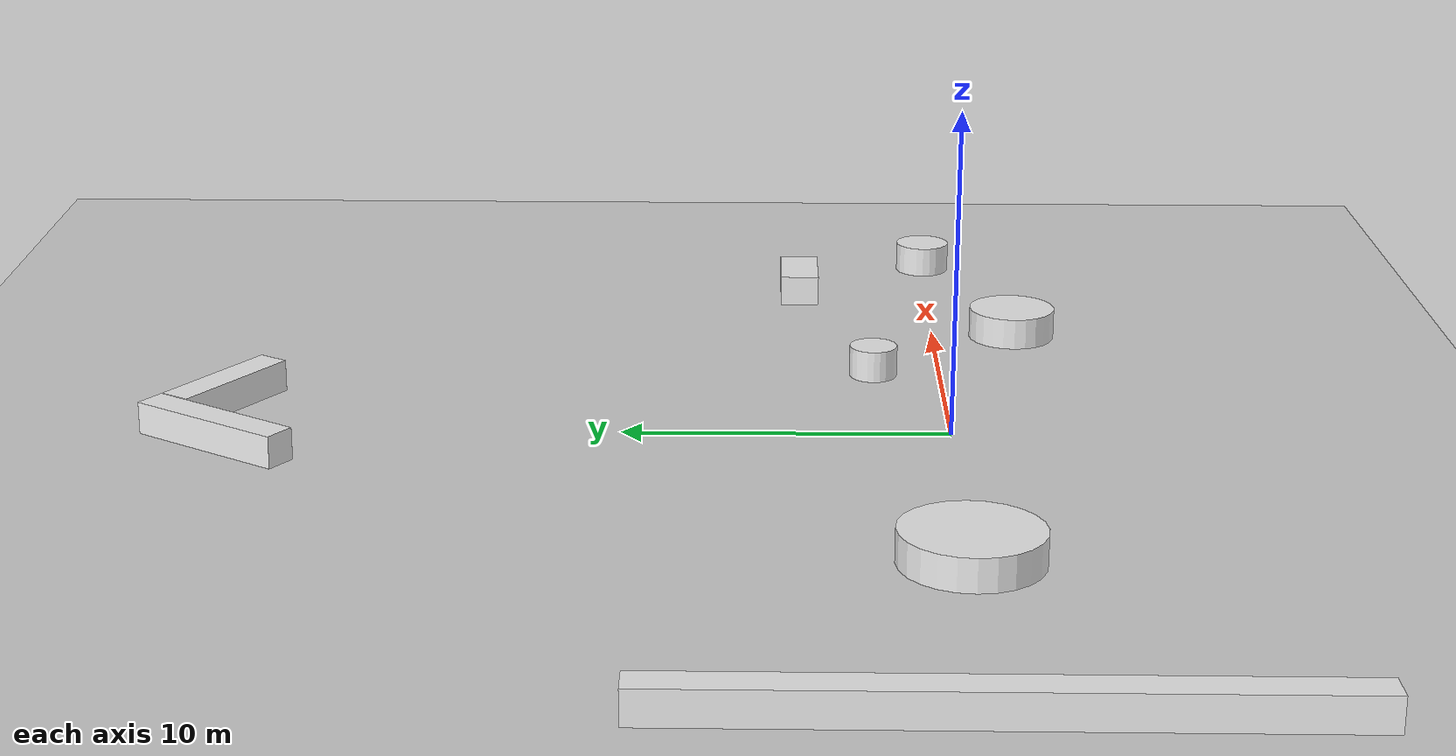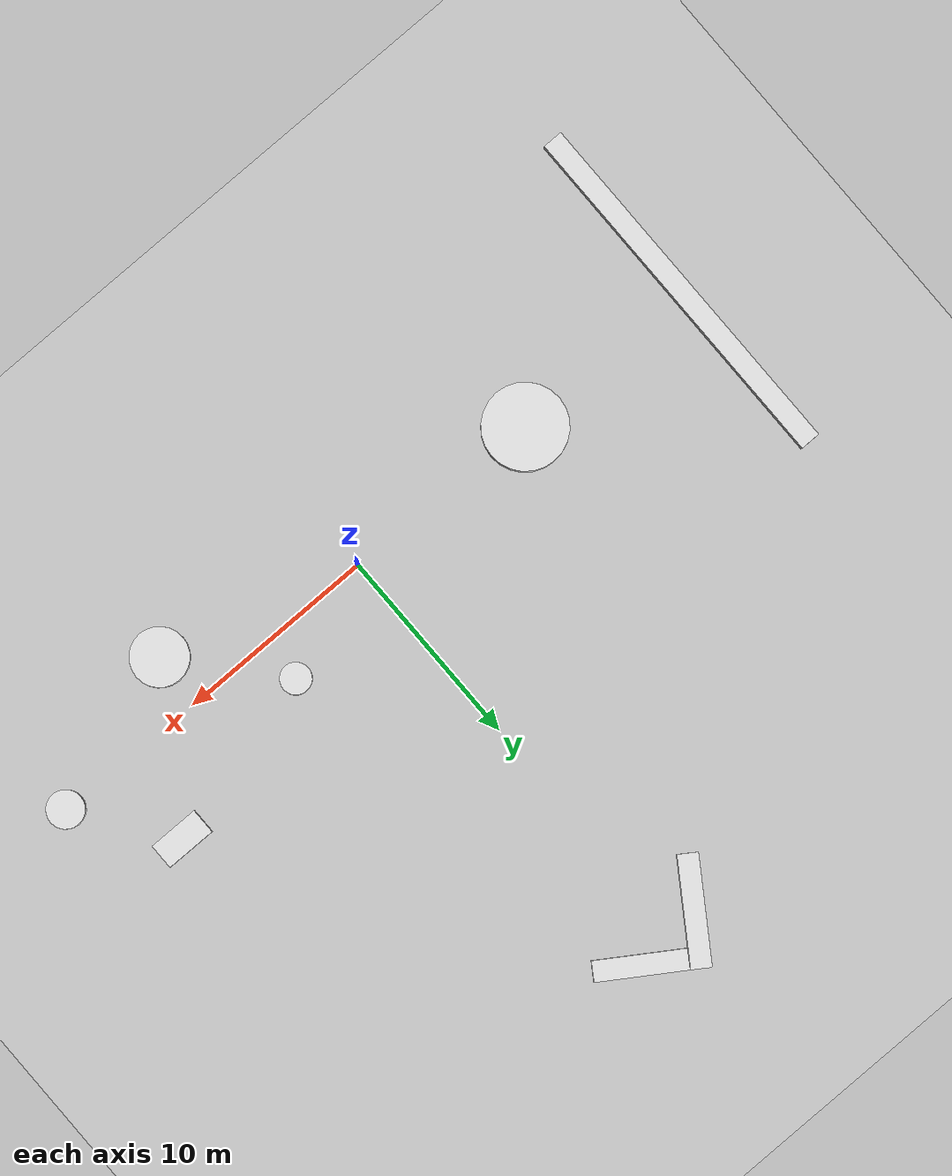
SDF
<sdf version="1.7">
 <world name="default">
  <light name="sun" type="directional">
   <pose>0 0 10 0 -0 0</pose>
   <diffuse>0.8 0.8 0.8 1</diffuse>
   <specular>0.2 0.2 0.2 1</specular>
   <attenuation>
    <range>1000</range>
    <constant>0.9</constant>
    <linear>0.01</linear>
    <quadratic>0.001</quadratic>
   </attenuation>
   <direction>-0.5 0.1 -0.9</direction>
   <spot><inner_angle>0</inner_angle><outer_angle>0</outer_angle><falloff>0</falloff></spot>
  </light>
  <model name="ground_plane">
   <static>1</static>
   <link name="link">
    <collision name="collision">
     <geometry><plane><normal>0 0 1</normal><size>100 100</size></plane></geometry>
     <surface><friction><ode><mu>100</mu><mu2>50</mu2></ode></friction></surface>
    </collision>
    <visual name="visual">
     <cast_shadows>0</cast_shadows>
     <geometry><plane><normal>0 0 1</normal><size>100 100</size></plane></geometry>
     <material>
      <script><uri>file://media/materials/scripts/gazebo.material</uri><name>Gazebo/Grey</name></script>
     </material>
    </visual>
   </link>
  </model>
  <gravity>0 0 -9.8</gravity>
  <magnetic_field>6e-06 2.3e-05 -4.2e-05</magnetic_field>
  <atmosphere type="adiabatic"/>
  <physics type="ode">
   <max_step_size>0.001</max_step_size>
   <real_time_factor>1</real_time_factor>
   <real_time_update_rate>3000</real_time_update_rate>
  </physics>
  <scene><ambient>0.4 0.4 0.4 1</ambient><background>0.7 0.7 0.7 1</background><shadows>1</shadows></scene>
  <spherical_coordinates>
   <surface_model>EARTH_WGS84</surface_model>
   <latitude_deg>0</latitude_deg>
   <longitude_deg>0</longitude_deg>
   <elevation>0</elevation>
   <heading_deg>0</heading_deg>
  </spherical_coordinates>
  <model name="unit_cylinder">
   <static>1</static>
   <pose>5.56554 2.14543 0.499996 -5e-06 5e-06 -0</pose>
   <link name="link">
    <inertial>
     <mass>1</mass>
     <inertia><ixx>0.145833</ixx><ixy>0</ixy><ixz>0</ixz><iyy>0.145833</iyy><iyz>0</iyz><izz>0.125</izz></inertia>
    </inertial>
    <collision name="collision">
     <geometry><cylinder><radius>0.759685</radius><length>1</length></cylinder></geometry>
    </collision>
    <visual name="visual">
     <geometry><cylinder><radius>0.759685</radius><length>1</length></cylinder></geometry>
     <material>
      <script><name>gazebo/White</name><uri>file://media/materials/scripts/gazebo.material</uri></script>
     </material>
    </visual>
   </link>
  </model>
  <model name="unit_cylinder_0">
   <static>1</static>
   <pose>17.4929 -0.127779 0.499995 -5e-06 -5e-06 4e-06</pose>
   <link name="link">
    <inertial>
     <mass>1</mass>
     <inertia><ixx>0.145833</ixx><ixy>0</ixy><ixz>0</ixz><iyy>0.145833</iyy><iyz>0</iyz><izz>0.125</izz></inertia>
    </inertial>
    <collision name="collision">
     <geometry><cylinder><radius>0.91564</radius><length>1</length></cylinder></geometry>
    </collision>
    <visual name="visual">
     <geometry><cylinder><radius>0.91564</radius><length>1</length></cylinder></geometry>
     <material>
      <script><name>gazebo/White</name><uri>file://media/materials/scripts/gazebo.material</uri></script>
     </material>
    </visual>
   </link>
  </model>
  <model name="unit_cylinder_1">
   <static>1</static>
   <pose>9.69279 -2.66029 0.499997 -5e-06 5e-06 -0</pose>
   <link name="link">
    <inertial>
     <mass>1</mass>
     <inertia><ixx>0.145833</ixx><ixy>0</ixy><ixz>0</ixz><iyy>0.145833</iyy><iyz>0</iyz><izz>0.125</izz></inertia>
    </inertial>
    <collision name="collision">
     <geometry><cylinder><radius>1.40925</radius><length>1</length></cylinder></geometry>
    </collision>
    <visual name="visual">
     <geometry><cylinder><radius>1.40925</radius><length>1</length></cylinder></geometry>
     <material>
      <script><name>gazebo/White</name><uri>file://media/materials/scripts/gazebo.material</uri></script>
     </material>
    </visual>
   </link>
  </model>
  <model name="unit_box">
   <static>1</static>
   <pose>14.3048 4.3741 0.499995 0 1e-05 0</pose>
   <link name="link">
    <inertial>
     <mass>1</mass>
     <inertia>
      <ixx>0.166667</ixx>
      <ixy>0</ixy>
      <ixz>0</ixz>
      <iyy>0.166667</iyy>
      <iyz>0</iyz>
      <izz>0.166667</izz>
     </inertia>
    </inertial>
    <collision name="collision"><geometry><box><size>2.53525 1.27904 1</size></box></geometry></collision>
    <visual name="visual">
     <geometry><box><size>2.53525 1.27904 1</size></box></geometry>
     <material>
      <script><name>gazebo/White</name><uri>file://media/materials/scripts/gazebo.material</uri></script>
     </material>
    </visual>
   </link>
  </model>
  <model name="unit_box_0">
   <static>1</static>
   <pose>2.05996 22.4064 0.5 -2e-06 -1e-06 -0.57494</pose>
   <link name="link">
    <inertial>
     <mass>1</mass>
     <inertia>
      <ixx>0.166667</ixx>
      <ixy>0</ixy>
      <ixz>0</ixz>
      <iyy>0.166667</iyy>
      <iyz>0</iyz>
      <izz>0.166667</izz>
     </inertia>
    </inertial>
    <collision name="collision"><geometry><box><size>4.43663 1 1</size></box></geometry></collision>
    <visual name="visual">
     <geometry><box><size>4.43663 1 1</size></box></geometry>
     <material>
      <script><name>gazebo/White</name><uri>file://media/materials/scripts/gazebo.material</uri></script>
     </material>
    </visual>
   </link>
  </model>
  <model name="unit_box_0_clone">
   <static>1</static>
   <pose>-1.44082 22.1083 0.5 -1e-06 0 -2.15806</pose>
   <link name="link">
    <inertial>
     <mass>1</mass>
     <inertia>
      <ixx>0.166667</ixx>
      <ixy>0</ixy>
      <ixz>0</ixz>
      <iyy>0.166667</iyy>
      <iyz>0</iyz>
      <izz>0.166667</izz>
     </inertia>
    </inertial>
    <collision name="collision"><geometry><box><size>5.32001 1 1</size></box></geometry></collision>
    <visual name="visual">
     <geometry><box><size>5.32001 1 1</size></box></geometry>
     <material>
      <script><name>gazebo/White</name><uri>file://media/materials/scripts/gazebo.material</uri></script>
     </material>
    </visual>
   </link>
  </model>
  <model name="unit_cylinder_2">
   <static>1</static>
   <pose>-9.95456 0.173495 0.5 0 -0 0</pose>
   <link name="link">
    <inertial>
     <mass>1</mass>
     <inertia><ixx>0.145833</ixx><ixy>0</ixy><ixz>0</ixz><iyy>0.145833</iyy><iyz>0</iyz><izz>0.125</izz></inertia>
    </inertial>
    <collision name="collision">
     <geometry><cylinder><radius>2.06156</radius><length>1</length></cylinder></geometry>
    </collision>
    <visual name="visual">
     <geometry><cylinder><radius>2.06156</radius><length>1</length></cylinder></geometry>
     <material>
      <script><name>gazebo/White</name><uri>file://media/materials/scripts/gazebo.material</uri></script>
     </material>
    </visual>
   </link>
  </model>
  <model name="unit_box_1">
   <static>1</static>
   <pose>-19.4924 0.048034 0.5 0 -0 0</pose>
   <link name="link">
    <inertial>
     <mass>1</mass>
     <inertia>
      <ixx>0.166667</ixx>
      <ixy>0</ixy>
      <ixz>0</ixz>
      <iyy>0.166667</iyy>
      <iyz>0</iyz>
      <izz>0.166667</izz>
     </inertia>
    </inertial>
    <collision name="collision"><geometry><box><size>1 18.2656 1</size></box></geometry></collision>
    <visual name="visual">
     <geometry><box><size>1 18.2656 1</size></box></geometry>
     <material>
      <script><name>gazebo/White</name><uri>file://media/materials/scripts/gazebo.material</uri></script>
     </material>
    </visual>
   </link>
  </model>
 </world>
</sdf>
